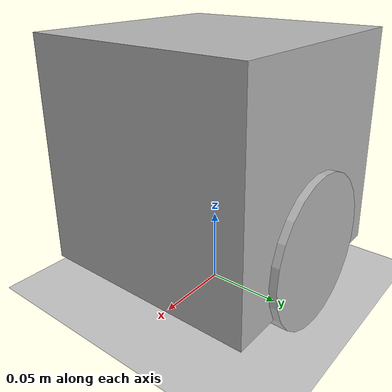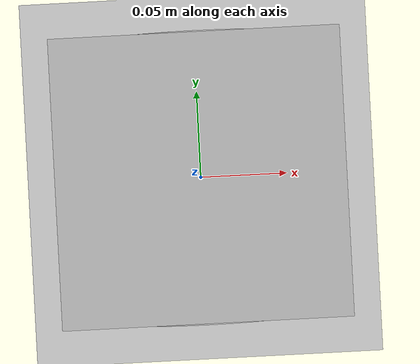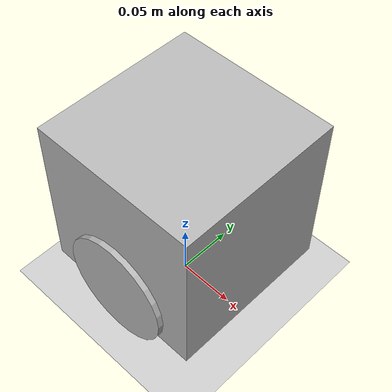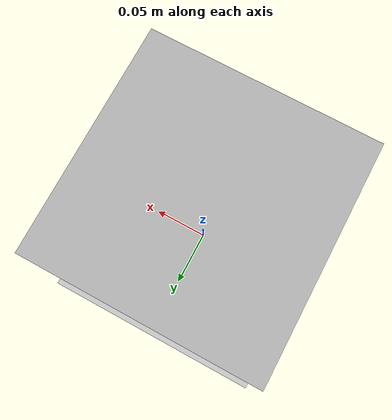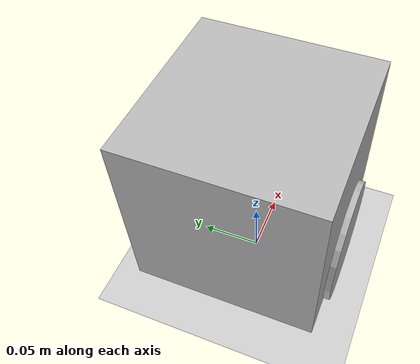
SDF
<?xml version="1.0"?>
<sdf version="1.5">
 <world name="default">
  <include>
   <uri>model://ground_plane</uri>
  </include>
  <include>
   <uri>model://sun</uri>
  </include>
  <model name="my_robot">

   <link name="chasis">
    <pose>0 0 0.1 0 0 0</pose>

    <collision name="collision">
     <geometry>
       <box>
        <size>0.15 0.15 0.15</size>
       </box>
     </geometry>
    </collision>

    <visual name="visual">
     <geometry>
      <box>
        <size>0.15 0.15 0.15</size>
      </box>
     </geometry>
    </visual>
    <collision name='caster_collision'>
            <pose>-0.040 0 -0.065 0 0 0</pose>
            <geometry>
                <sphere>
                <radius>.035</radius>
              </sphere>
            </geometry>

            <surface>
              <friction>
                <ode>
                  <mu>0</mu>
                  <mu2>0</mu2>
                  <slip1>1.0</slip1>
                  <slip2>1.0</slip2>
                </ode>
              </friction>
            </surface>
    </collision>

    <visual name='caster_visual'>
            <pose>-0.040 0 -0.065 0 0 0</pose>
            <geometry>
              <sphere>
                <radius>.035</radius>
              </sphere>
            </geometry>
    </visual>
   </link>
   <link name="left_wheel">
        <pose>0 0.07 0.05 0 1.5707 1.5707</pose>
        <collision name="collision">
          <geometry>
            <cylinder>
              <radius>0.05</radius>
              <length>.02</length>
            </cylinder>
          </geometry>
        </collision>
        <visual name="visual">
          <geometry>
            <cylinder>
              <radius>.05</radius>
              <length>.02</length>
            </cylinder>
          </geometry>
        </visual>
   </link>
   <link name="right_wheel">
        <pose>0 -0.07 0.05 0 1.5707 1.5707</pose>
        <collision name="collision">
          <geometry>
            <cylinder>
              <radius>0.05</radius>
              <length>.02</length>
            </cylinder>
          </geometry>
        </collision>
        <visual name="visual">
          <geometry>
            <cylinder>
              <radius>.05</radius>
              <length>.02</length>
            </cylinder>
          </geometry>
        </visual>
   </link>
   <joint type="revolute" name="left_wheel_hinge">
        <pose>0 0 -0.015 0 0 0</pose>
        <child>left_wheel</child>
        <parent>chasis</parent>
        <axis>
          <xyz>0 1 0</xyz>
        </axis>
   </joint>

   <joint type="revolute" name="right_wheel_hinge">
        <pose>0 0 0.015 0 0 0</pose>
        <child>right_wheel</child>
        <parent>chasis</parent>
        <axis>
          <xyz>0 1 0</xyz>
        </axis>
   </joint>
  </model>
 </world>

</sdf>
